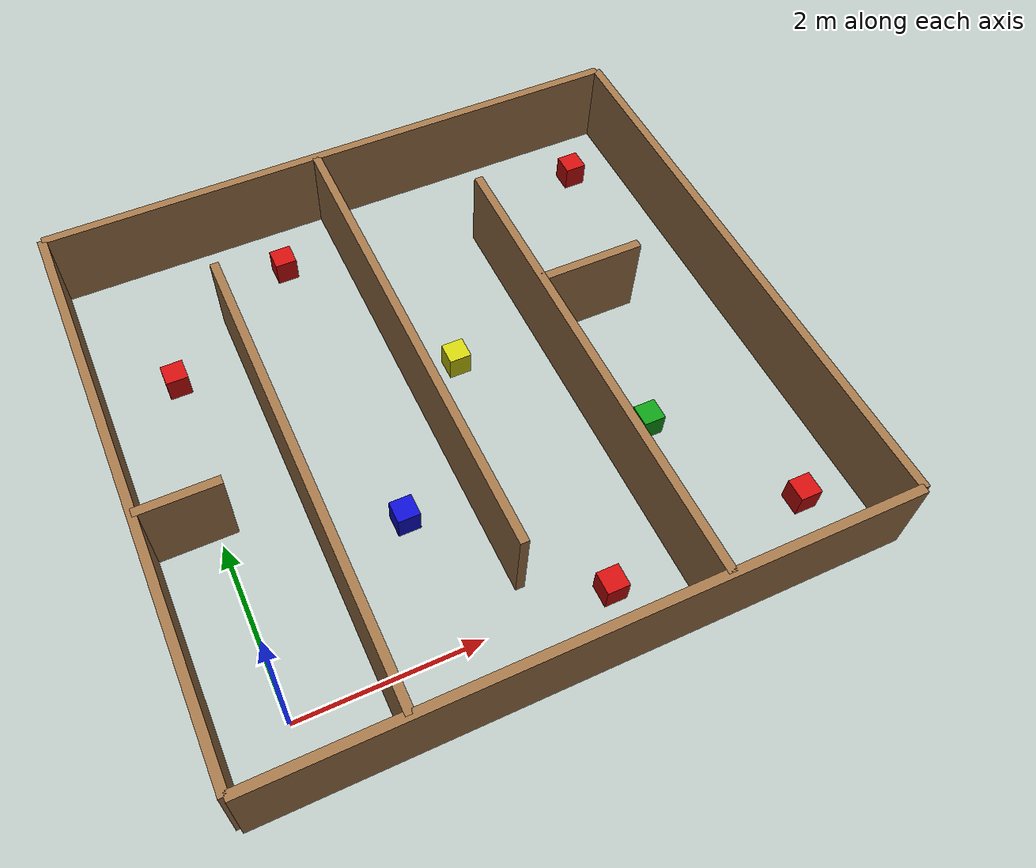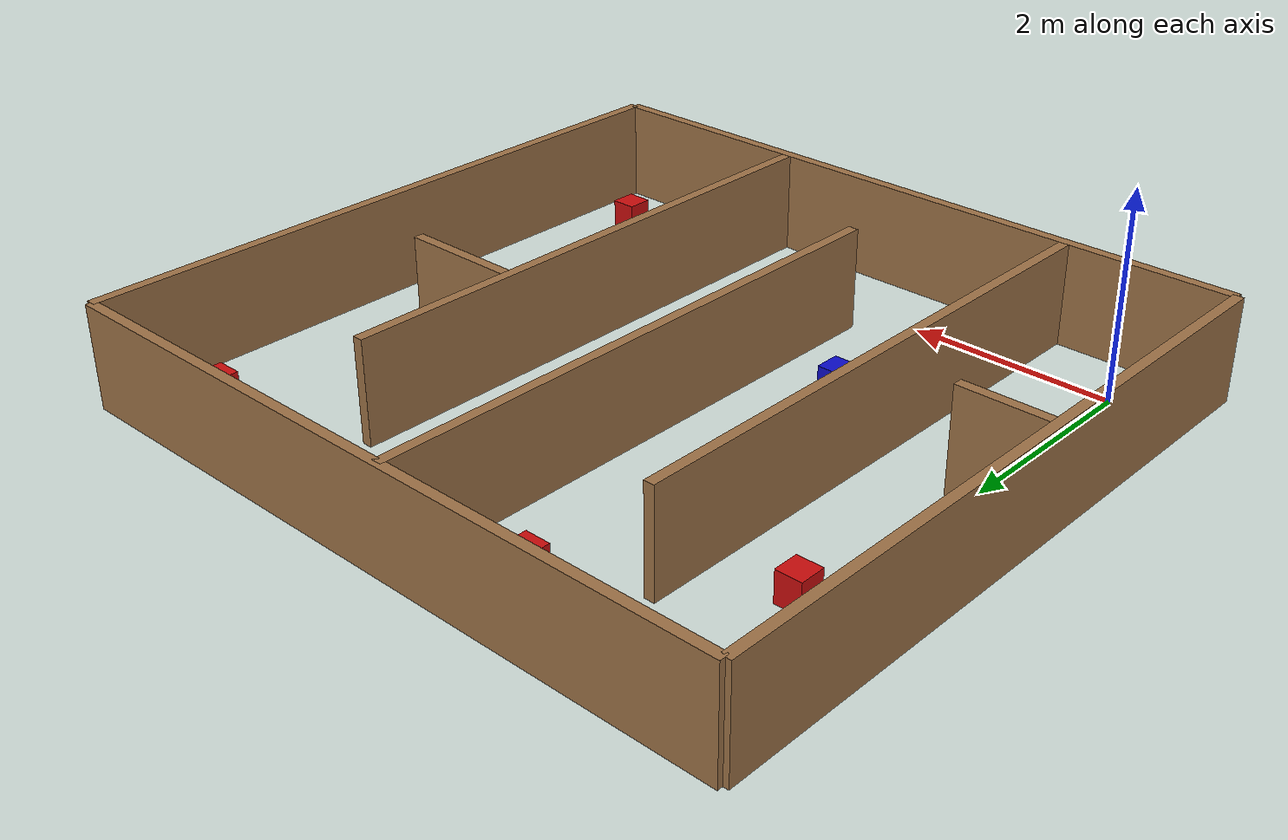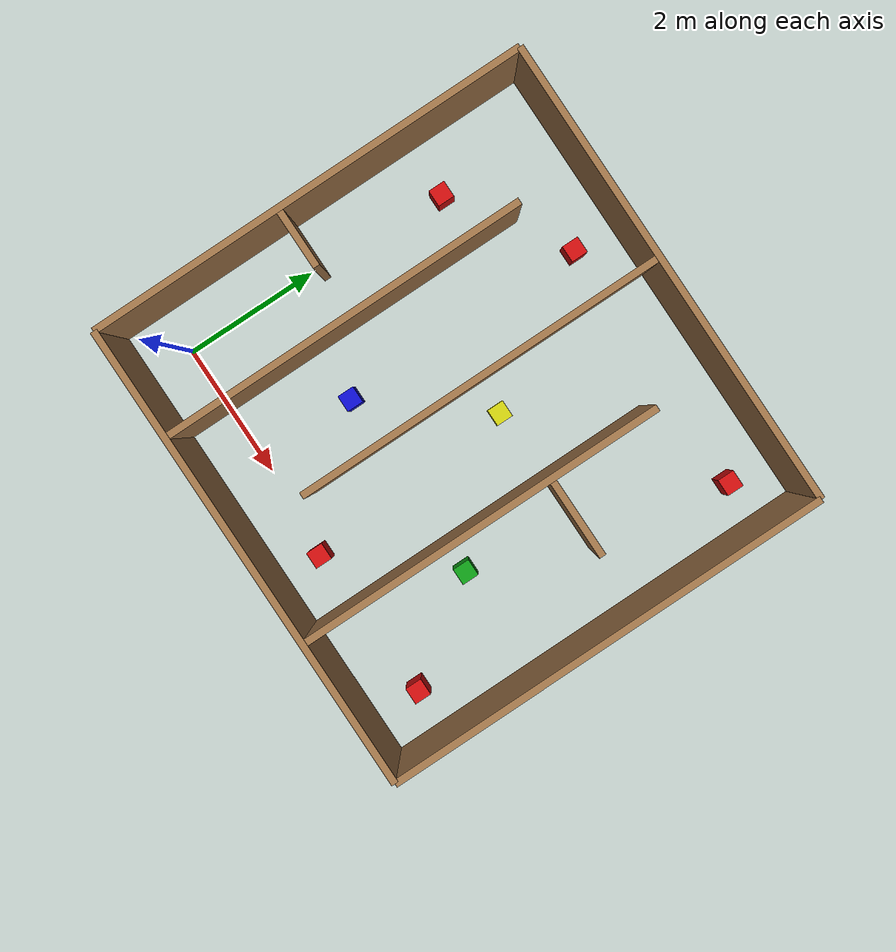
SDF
<sdf version="1.5">
 <world name="tars_nuevo_galerias">
  <physics type="ode">
   <max_step_size>0.001</max_step_size>
   <real_time_factor>1</real_time_factor>
   <real_time_update_rate>1000</real_time_update_rate>
   <gravity>0 0 -9.8</gravity>
  </physics>
  <plugin filename="gz-sim-physics-system" name="gz::sim::systems::Physics"/>
  <plugin filename="gz-sim-user-commands-system" name="gz::sim::systems::UserCommands"/>
  <plugin filename="gz-sim-scene-broadcaster-system" name="gz::sim::systems::SceneBroadcaster"/>
  <plugin filename="gz-sim-contact-system" name="gz::sim::systems::Contact"/>
  <plugin filename="gz-sim-sensors-system" name="gz::sim::systems::Sensors">
   <render_engine>ogre2</render_engine>
  </plugin>
  <plugin filename="gz-sim-imu-system" name="gz::sim::systems::Imu"/>
  <scene>
   <shadows>false</shadows>
   <ambient>0.2 0.2 0.2 1</ambient>
   <background>1 1 1 1</background>
   <grid>false</grid>
   <origin_visual>false</origin_visual>
  </scene>
  <include><uri>model://sun</uri></include>
  <light name="camera_spot_1_light" type="spot">
   <pose>-6 4 4 0 -1 -0.8</pose>
   <diffuse>0.5 0.5 0.5 1</diffuse>
   <specular>0.1 0.1 0.1 1</specular>
   <direction>0 0 -1</direction>
   <attenuation>
    <range>20</range>
    <constant>0.2</constant>
    <linear>0.01</linear>
    <quadratic>0.001</quadratic>
   </attenuation>
   <cast_shadows>0</cast_shadows>
   <spot><inner_angle>0.6</inner_angle><outer_angle>1</outer_angle><falloff>1</falloff></spot>
  </light>
  <light name="camera_spot_2_light" type="spot">
   <pose>5 -3 4 0 0.8 -0.6</pose>
   <diffuse>0.5 0.5 0.5 1</diffuse>
   <specular>0.1 0.1 0.1 1</specular>
   <direction>0 0 -1</direction>
   <attenuation>
    <range>20</range>
    <constant>0.3</constant>
    <linear>0.01</linear>
    <quadratic>0.001</quadratic>
   </attenuation>
   <cast_shadows>0</cast_shadows>
   <spot><inner_angle>0.6</inner_angle><outer_angle>1</outer_angle><falloff>1</falloff></spot>
  </light>
  <model name="paredes_nuevas">
   <static>true</static>
   <link name="pared_1">
    <pose>2.800000 -0.700000 0.500000 0 0 0.000000000</pose>
    <collision name="collision"><geometry><box><size>7.0 0.1 1.0</size></box></geometry></collision>
    <visual name="visual">
     <geometry><box><size>7.0 0.1 1.0</size></box></geometry>
     <material><ambient>0.62 0.45 0.28 1</ambient><diffuse>0.62 0.45 0.28 1</diffuse></material>
    </visual>
   </link>
   <link name="pared_2">
    <pose>6.300000 2.600000 0.500000 0 0 1.570796327</pose>
    <collision name="collision">
     <geometry><box><size>6.6000000000000005 0.1 1.0</size></box></geometry>
    </collision>
    <visual name="visual">
     <geometry><box><size>6.6000000000000005 0.1 1.0</size></box></geometry>
     <material><ambient>0.62 0.45 0.28 1</ambient><diffuse>0.62 0.45 0.28 1</diffuse></material>
    </visual>
   </link>
   <link name="pared_3">
    <pose>2.800000 5.900000 0.500000 0 0 3.141592654</pose>
    <collision name="collision"><geometry><box><size>7.0 0.1 1.0</size></box></geometry></collision>
    <visual name="visual">
     <geometry><box><size>7.0 0.1 1.0</size></box></geometry>
     <material><ambient>0.62 0.45 0.28 1</ambient><diffuse>0.62 0.45 0.28 1</diffuse></material>
    </visual>
   </link>
   <link name="pared_4">
    <pose>-0.700000 2.600000 0.500000 0 0 -1.570796327</pose>
    <collision name="collision">
     <geometry><box><size>6.6000000000000005 0.1 1.0</size></box></geometry>
    </collision>
    <visual name="visual">
     <geometry><box><size>6.6000000000000005 0.1 1.0</size></box></geometry>
     <material><ambient>0.62 0.45 0.28 1</ambient><diffuse>0.62 0.45 0.28 1</diffuse></material>
    </visual>
   </link>
   <link name="pared_5">
    <pose>0.950000 2.050000 0.500000 0 0 1.570796327</pose>
    <collision name="collision"><geometry><box><size>5.5 0.1 1.0</size></box></geometry></collision>
    <visual name="visual">
     <geometry><box><size>5.5 0.1 1.0</size></box></geometry>
     <material><ambient>0.62 0.45 0.28 1</ambient><diffuse>0.62 0.45 0.28 1</diffuse></material>
    </visual>
   </link>
   <link name="pared_6">
    <pose>2.550000 3.125000 0.500000 0 0 1.570796327</pose>
    <collision name="collision"><geometry><box><size>5.550000000000001 0.1 1.0</size></box></geometry></collision>
    <visual name="visual">
     <geometry><box><size>5.550000000000001 0.1 1.0</size></box></geometry>
     <material><ambient>0.62 0.45 0.28 1</ambient><diffuse>0.62 0.45 0.28 1</diffuse></material>
    </visual>
   </link>
   <link name="pared_7">
    <pose>4.150000 2.050000 0.500000 0 0 1.570796327</pose>
    <collision name="collision"><geometry><box><size>5.5 0.1 1.0</size></box></geometry></collision>
    <visual name="visual">
     <geometry><box><size>5.5 0.1 1.0</size></box></geometry>
     <material><ambient>0.62 0.45 0.28 1</ambient><diffuse>0.62 0.45 0.28 1</diffuse></material>
    </visual>
   </link>
   <link name="pared_8">
    <pose>-0.250000 2.150000 0.500000 0 0 0.000000000</pose>
    <collision name="collision">
     <geometry><box><size>0.8999999999999999 0.1 1.0</size></box></geometry>
    </collision>
    <visual name="visual">
     <geometry><box><size>0.8999999999999999 0.1 1.0</size></box></geometry>
     <material><ambient>0.62 0.45 0.28 1</ambient><diffuse>0.62 0.45 0.28 1</diffuse></material>
    </visual>
   </link>
   <link name="pared_9">
    <pose>4.750000 3.150000 0.500000 0 0 0.000000000</pose>
    <collision name="collision">
     <geometry><box><size>1.1999999999999993 0.1 1.0</size></box></geometry>
    </collision>
    <visual name="visual">
     <geometry><box><size>1.1999999999999993 0.1 1.0</size></box></geometry>
     <material><ambient>0.62 0.45 0.28 1</ambient><diffuse>0.62 0.45 0.28 1</diffuse></material>
    </visual>
   </link>
  </model>
  <model name="marcas_color">
   <static>true</static>
   <link name="cuadrado_rojo_1">
    <pose>0.15 4.1 0.15 0 0 0</pose>
    <collision name="collision"><geometry><box><size>0.25 0.25 0.3</size></box></geometry></collision>
    <visual name="visual">
     <geometry><box><size>0.25 0.25 0.3</size></box></geometry>
     <material>
      <ambient>0.8 0.05 0.05 1</ambient>
      <diffuse>0.8 0.05 0.05 1</diffuse>
      <specular>0.1 0.1 0.1 1</specular>
     </material>
    </visual>
   </link>
   <link name="cuadrado_rojo_2">
    <pose>1.8 5.2 0.15 0 0 0</pose>
    <collision name="collision"><geometry><box><size>0.25 0.25 0.3</size></box></geometry></collision>
    <visual name="visual">
     <geometry><box><size>0.25 0.25 0.3</size></box></geometry>
     <material>
      <ambient>0.8 0.05 0.05 1</ambient>
      <diffuse>0.8 0.05 0.05 1</diffuse>
      <specular>0.1 0.1 0.1 1</specular>
     </material>
    </visual>
   </link>
   <link name="cuadrado_rojo_3">
    <pose>3.35 -0.05 0.15 0 0 0</pose>
    <collision name="collision"><geometry><box><size>0.25 0.25 0.3</size></box></geometry></collision>
    <visual name="visual">
     <geometry><box><size>0.25 0.25 0.3</size></box></geometry>
     <material>
      <ambient>0.8 0.05 0.05 1</ambient>
      <diffuse>0.8 0.05 0.05 1</diffuse>
      <specular>0.1 0.1 0.1 1</specular>
     </material>
    </visual>
   </link>
   <link name="cuadrado_rojo_4">
    <pose>5.65 5.2 0.15 0 0 0</pose>
    <collision name="collision"><geometry><box><size>0.25 0.25 0.3</size></box></geometry></collision>
    <visual name="visual">
     <geometry><box><size>0.25 0.25 0.3</size></box></geometry>
     <material>
      <ambient>0.8 0.05 0.05 1</ambient>
      <diffuse>0.8 0.05 0.05 1</diffuse>
      <specular>0.1 0.1 0.1 1</specular>
     </material>
    </visual>
   </link>
   <link name="cuadrado_rojo_5">
    <pose>5.65 0.05 0.15 0 0 0</pose>
    <collision name="collision"><geometry><box><size>0.25 0.25 0.3</size></box></geometry></collision>
    <visual name="visual">
     <geometry><box><size>0.25 0.25 0.3</size></box></geometry>
     <material>
      <ambient>0.8 0.05 0.05 1</ambient>
      <diffuse>0.8 0.05 0.05 1</diffuse>
      <specular>0.1 0.1 0.1 1</specular>
     </material>
    </visual>
   </link>
   <link name="cuadrado_azul_1">
    <pose>1.800000 1.500000 0.150000 0 0 0.000000000</pose>
    <collision name="collision"><geometry><box><size>0.25 0.25 0.3</size></box></geometry></collision>
    <visual name="visual">
     <geometry><box><size>0.25 0.25 0.3</size></box></geometry>
     <material><ambient>0.05 0.05 0.8 1</ambient><diffuse>0.05 0.05 0.8 1</diffuse></material>
    </visual>
   </link>
   <link name="cuadrado_amarillo_2">
    <pose>3.100000 3.100000 0.150000 0 0 0.000000000</pose>
    <collision name="collision"><geometry><box><size>0.25 0.25 0.3</size></box></geometry></collision>
    <visual name="visual">
     <geometry><box><size>0.25 0.25 0.3</size></box></geometry>
     <material><ambient>0.8 0.8 0.05 1</ambient><diffuse>0.8 0.8 0.05 1</diffuse></material>
    </visual>
   </link>
   <link name="cuadrado_verde_3">
    <pose>4.650000 1.500000 0.150000 0 0 0.000000000</pose>
    <collision name="collision"><geometry><box><size>0.25 0.25 0.3</size></box></geometry></collision>
    <visual name="visual">
     <geometry><box><size>0.25 0.25 0.3</size></box></geometry>
     <material><ambient>0.05 0.6 0.08 1</ambient><diffuse>0.05 0.6 0.08 1</diffuse></material>
    </visual>
   </link>
  </model>
 </world>
</sdf>
